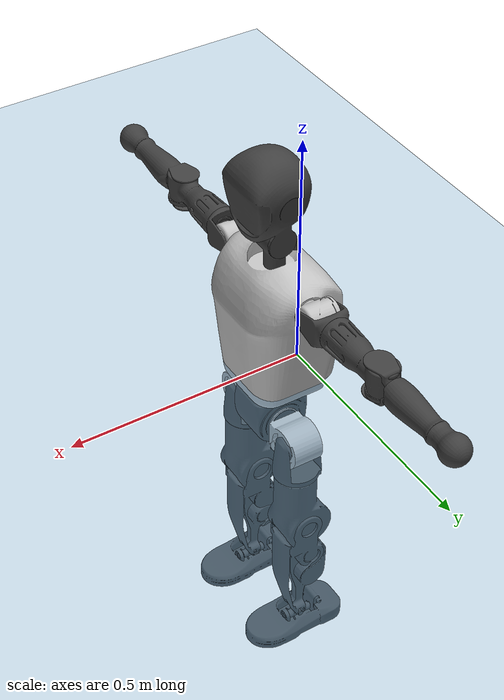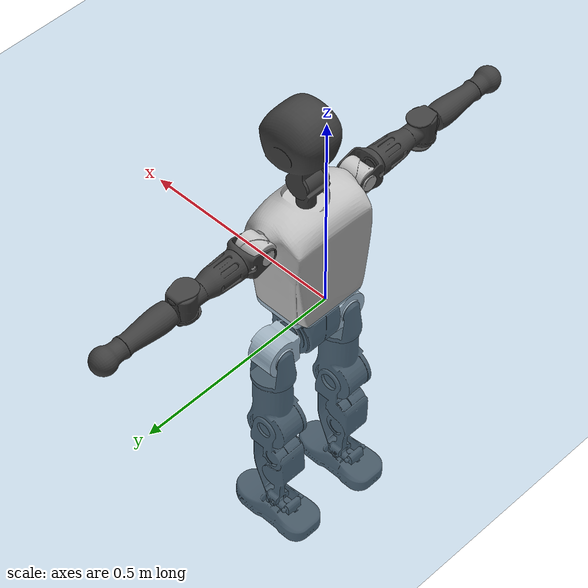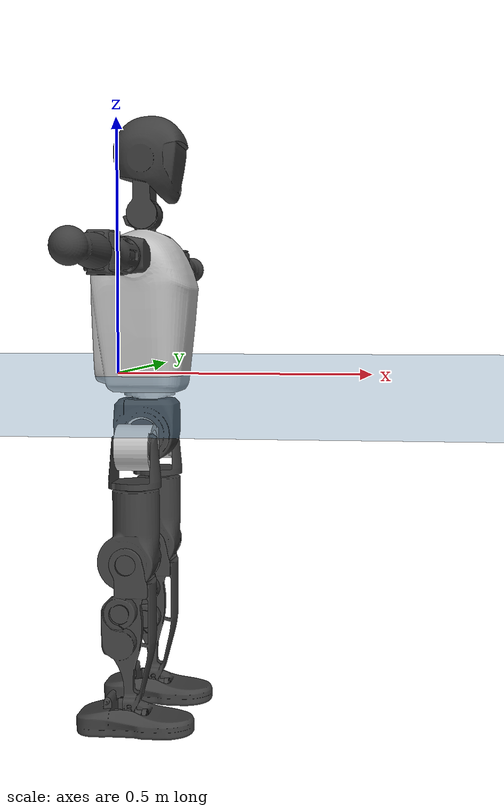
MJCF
<mujoco model="T1">
  <compiler angle="radian" assetdir="assets" balanceinertia="true" inertiafromgeom="false"/>

  <option timestep="0.005" density="1.2" viscosity="2e-05"/>

  <size nkey="1"/>

  <visual>
    <quality shadowsize="8192"/>
    <map shadowclip="0.5"/>
  </visual>

  <default>
    <default class="/">
      <joint armature="0.01" damping="0.01" frictionloss="0.1"/>
      <geom contype="0" conaffinity="0" group="1" solref="-1000 -80"/>
      <site size="0.01 0.005 0.005" group="5"/>
      <general forcelimited="true" biastype="affine" gainprm="25" biasprm="0 -25 -0.6"/>
      <default class="t1">
        <geom rgba="0.25 0.25 0.25 1"/>
        <default class="visual">
          <geom type="mesh" group="2"/>
        </default>
        <default class="collision">
          <geom group="3"/>
        </default>
        <default class="foot">
          <geom size="0.1115 0.05 0.015" type="box" condim="6" group="4" priority="1" solimp="0.015 1 0.015"/>
        </default>
        <default class="reward_collision_sphere">
          <geom group="5" rgba="1 0 0 1"/>
        </default>
      </default>
    </default>
  </default>

  <asset>
    <texture type="skybox" colorspace="auto" name="//unnamed_texture_0" builtin="gradient" rgb1="0.95 0.95 0.95" rgb2="0.95 0.95 0.95" width="100" height="600"/>
    <texture type="2d" colorspace="auto" name="texplane" builtin="checker" rgb1="0.345 0.575 0.748" rgb2="0.345 0.575 0.748" markrgb="1 1 1" width="512" height="512"/>
    <material name="MatPlane" class="/" texture="texplane" texuniform="true" texrepeat="2 2" specular="0.9"/>
    <mesh name="Trunk" class="/" file="Trunk.stl"/>
    <mesh name="H1" class="/" file="H1.stl"/>
    <mesh name="H2" class="/" file="H2.stl"/>
    <mesh name="AL1" class="/" file="AL1.stl"/>
    <mesh name="AL2" class="/" file="AL2.stl"/>
    <mesh name="AL3" class="/" file="AL3.stl"/>
    <mesh name="left_hand_link" class="/" file="left_hand_link.stl"/>
    <mesh name="AR1" class="/" file="AR1.stl"/>
    <mesh name="AR2" class="/" file="AR2.stl"/>
    <mesh name="AR3" class="/" file="AR3.stl"/>
    <mesh name="right_hand_link" class="/" file="right_hand_link.stl"/>
    <mesh name="Waist" class="/" file="Waist.stl"/>
    <mesh name="Hip_Pitch_Left" class="/" file="Hip_Pitch_Left.stl"/>
    <mesh name="Hip_Roll_Left" class="/" file="Hip_Roll_Left.stl"/>
    <mesh name="Hip_Yaw_Left" class="/" file="Hip_Yaw_Left.stl"/>
    <mesh name="Shank_Left" class="/" file="Shank_Left.stl"/>
    <mesh name="Ankle_Cross_Left" class="/" file="Ankle_Cross_Left.stl"/>
    <mesh name="left_foot_link" class="/" file="left_foot_link.stl"/>
    <mesh name="Hip_Pitch_Right" class="/" file="Hip_Pitch_Right.stl"/>
    <mesh name="Hip_Roll_Right" class="/" file="Hip_Roll_Right.stl"/>
    <mesh name="Hip_Yaw_Right" class="/" file="Hip_Yaw_Right.stl"/>
    <mesh name="Shank_Right" class="/" file="Shank_Right.stl"/>
    <mesh name="Ankle_Cross_Right" class="/" file="Ankle_Cross_Right.stl"/>
    <mesh name="right_foot_link" class="/" file="right_foot_link.stl"/>
  </asset>

  <worldbody>
    <geom name="floor" class="/" size="100 100 0.125" type="plane" group="0" material="MatPlane"/>
    <light name="toplight_shadow" class="/" pos="0 0 5" dir="0.0990148 0.0990148 -0.990148" type="directional" ambient="0.04 0.04 0.04" diffuse="0.55 0.55 0.55" specular="0.12 0.12 0.12"/>
    <light name="toplight_fill" class="/" pos="0 0 5" dir="0.0990148 0.0990148 -0.990148" type="directional" castshadow="false" ambient="0.04 0.04 0.04" diffuse="0.3 0.3 0.3" specular="0.08 0.08 0.08"/>
    <body name="trunk" childclass="t1" pos="0.00011838 0.000277207 0.000552027" quat="1 -0.00014035 -0.000290471 -0.000504962">
      <inertial pos="0.051259 6.36433e-05 0.107947" quat="0.999957 0.00144761 -0.00715163 0.00564069" mass="10.2651" diaginertia="0.0666754 0.051812 0.0641738"/>
      <joint name="//unnamed_joint_0" type="free" armature="0" damping="0" frictionloss="0"/>
      <geom name="//unnamed_geom_1" class="visual" rgba="0.76 0.76 0.76 1" mesh="Trunk"/>
      <geom name="//unnamed_geom_2" class="collision" size="0.0719041 0.0958722 0.143808" pos="0.0556855 0 0.122869" type="box"/>
      <geom name="//unnamed_geom_3" class="reward_collision_sphere" size="0.110253" pos="0.0556855 0 0.102391"/>
      <geom name="//unnamed_geom_4" class="reward_collision_sphere" size="0.0143808" pos="0.0556855 0.0785539 0"/>
      <geom name="//unnamed_geom_5" class="reward_collision_sphere" size="0.0143808" pos="0.0556855 -0.0785539 0"/>
      <geom name="//unnamed_geom_6" class="reward_collision_sphere" size="0.0143808" pos="0.0556855 0.0988855 0.184304"/>
      <geom name="//unnamed_geom_7" class="reward_collision_sphere" size="0.0143808" pos="0.0556855 -0.0988855 0.184304"/>
      <site name="imu" pos="0.00511735 -0.000229138 -0.00469871" size="0.00958722"/>
      <camera name="track" pos="0 -1.84833 0" quat="0.707107 0.707107 0 0" mode="trackcom"/>
      <camera name="ego_camera" pos="0.113227 0 0.430042" quat="-0.5 -0.5 0.5 0.5"/>
      <body name="H1" pos="0.0556337 -0.000450409 0.24641" quat="1 0.000113226 -9.52754e-05 -0.00011242">
        <inertial pos="-0.00076109 -0.00198022 0.0588186" quat="0.763956 -0.0135545 0.00287372 0.64512" mass="0.391132" diaginertia="0.000165219 0.000148174 0.000169266"/>
        <joint name="AAHead_yaw" pos="0 0 0" axis="0.00170924 0.000761767 0.999998" range="-1.54879 1.57953" armature="0.0106708" damping="0.011787" frictionloss="0.106021"/>
        <geom name="//unnamed_geom_8" class="visual" mesh="H1"/>
        <body name="H2" pos="-4.00894e-05 -0.00282557 0.0643485" quat="1 0.000421598 0.000128406 2.49827e-06">
          <inertial pos="0.0079246 -0.00129877 0.0984999" quat="0.987626 0.11249 -0.071736 -0.082426" mass="0.55562" diaginertia="0.00141572 0.00126564 0.00194774"/>
          <joint name="Head_pitch" pos="0 0 0" axis="8.18674e-05 -0.999984 -0.00572499" range="-1.21484 0.366636" armature="0.00969072" damping="0" frictionloss="0.0961871"/>
          <geom name="//unnamed_geom_9" class="visual" mesh="H2"/>
          <geom name="//unnamed_geom_10" class="collision" size="0.0766977" pos="0.00928092 0 0.11263"/>
          <geom name="//unnamed_geom_11" class="reward_collision_sphere" size="0.086285" pos="0.0185618 0 0.102391"/>
        </body>
      </body>
      <body name="AL1" pos="0.0538085 0.0998654 0.222175" quat="0.999999 0.00064558 0.00141374 0.000502106">
        <inertial pos="-0.00153171 0.0417789 -0.000488895" quat="0.504786 0.495817 -0.5039 0.49542" mass="0.468032" diaginertia="0.000941931 0.000847231 0.000322509"/>
        <joint name="Left_Shoulder_Pitch" pos="0 0 0" axis="-0.00666626 0.999958 -0.00622533" stiffness="0.00318542" range="-3.3068 1.26952" armature="0.00968352" damping="0" frictionloss="0.0950142"/>
        <geom name="//unnamed_geom_12" class="visual" rgba="0.76 0.76 0.76 1" mesh="AL1"/>
        <body name="AL2" pos="-0.000706098 0.0429315 -0.000776883" quat="1 -0.000143199 0.000410986 -0.00010541">
          <inertial pos="0.00428498 0.0372377 2.46646e-05" quat="0.487155 0.511718 -0.488172 0.51236" mass="0.140827" diaginertia="0.000278147 0.00023183 0.000199754"/>
          <joint name="Left_Shoulder_Roll" pos="0 0 0" axis="-0.999998 -0.000325003 0.00193409" range="-1.5798 1.74635" armature="0.0107283" damping="0.00895652" frictionloss="0.0955467"/>
          <geom name="//unnamed_geom_13" class="visual" mesh="AL2"/>
          <body name="AL3" pos="-0.000106623 0.0563345 -0.0001137" quat="1 0.00045664 0.000128112 0.000220616">
            <inertial pos="0.0015586 0.0765733 -0.00122845" quat="0.706324 0.707889 6.24481e-05 -5.005e-05" mass="0.859114" diaginertia="0.00889989 0.0085196 0.000675562"/>
            <joint name="Left_Elbow_Pitch" pos="0 0 0" axis="0.00200627 -0.999997 -0.00160225" range="-2.32255 2.2856" armature="0.0108627" damping="0.0109896" frictionloss="0.094544"/>
            <geom name="//unnamed_geom_14" class="visual" mesh="AL3"/>
            <geom name="//unnamed_geom_15" class="collision" size="0.0287617 0.0719041" pos="0 0.0462082 0" quat="0.707105 0.707108 0 0" type="cylinder"/>
            <geom name="//unnamed_geom_16" class="reward_collision_sphere" size="0.034514"/>
            <body name="left_hand_link" pos="0.00156927 0.13556 -7.86578e-05" quat="0.999999 0.000182216 -0.000215138 0.00112903">
              <inertial pos="-0.00243332 0.100675 0.000365143" quat="0.70808 0.706117 -6.61933e-05 -0.00471867" mass="0.28916" diaginertia="0.00546861 0.00542202 0.000247921"/>
              <joint name="Left_Elbow_Yaw" pos="0 0 0" axis="0.000639946 -2.95065e-05 1" stiffness="9.69462e-05" range="-2.45021 -0.0460591" armature="0.00961038" damping="0.0101281" frictionloss="0.0953747"/>
              <geom name="//unnamed_geom_17" class="visual" mesh="left_hand_link"/>
              <geom name="//unnamed_geom_18" class="collision" size="0.0287617 0.0838882" pos="0 0.120141 0" quat="0.707105 0.707108 0 0" type="cylinder"/>
              <geom name="//unnamed_geom_19" class="reward_collision_sphere" size="0.0479361"/>
              <geom name="//unnamed_geom_20" class="reward_collision_sphere" size="0.0335553" pos="0 0.101658 0"/>
              <geom name="//unnamed_geom_21" class="reward_collision_sphere" size="0.0335553" pos="0 0.198695 0"/>
            </body>
          </body>
        </body>
      </body>
      <body name="AR1" pos="0.0520506 -0.0993039 0.222881" quat="1 0.00014015 0.000592472 0.000534364">
        <inertial pos="-0.00137263 -0.04439 0.000581864" quat="0.502949 0.496811 -0.504217 0.49597" mass="0.450409" diaginertia="0.000924704 0.000846299 0.000318579"/>
        <joint name="Right_Shoulder_Pitch" pos="0 0 0" axis="0.00730181 -0.999919 -0.0104489" range="-1.2314 3.31367" armature="0.0105045" damping="0.0143797" frictionloss="0.098068"/>
        <geom name="//unnamed_geom_22" class="visual" rgba="0.76 0.76 0.76 1" mesh="AR1"/>
        <body name="AR2" pos="0.00192276 -0.0415617 -0.000205903" quat="0.999999 -0.000325452 0.000797486 0.000871469">
          <inertial pos="0.0031528 -0.0344434 0.00134264" quat="0.512431 0.487798 -0.513539 0.485536" mass="0.137232" diaginertia="0.000276048 0.000239267 0.000200917"/>
          <joint name="Right_Shoulder_Roll" pos="0 0 0" axis="-0.99998 -0.00226567 0.00590437" range="-1.75885 1.55072" armature="0.00940649" damping="0.00414202" frictionloss="0.108144"/>
          <geom name="//unnamed_geom_23" class="visual" mesh="AR2"/>
          <body name="AR3" pos="-4.84061e-05 -0.0573788 -0.0025925" quat="1 -4.89519e-06 2.22057e-06 8.20461e-07">
            <inertial pos="0.000171223 -0.0811617 0.000860484" quat="0.704953 0.7092 0.00812353 0.00342084" mass="0.897803" diaginertia="0.00882846 0.00870319 0.000714331"/>
            <joint name="Right_Elbow_Pitch" pos="0 0 0" axis="0.00914402 0.999957 0.00182222" range="-2.31093 2.26487" armature="0.00845216" damping="0.0087096" frictionloss="0.0987442"/>
            <geom name="//unnamed_geom_24" class="visual" mesh="AR3"/>
            <geom name="//unnamed_geom_25" class="collision" size="0.0287617 0.0719041" pos="0 -0.0462082 0" quat="0.707105 0.707108 0 0" type="cylinder"/>
            <geom name="//unnamed_geom_26" class="reward_collision_sphere" size="0.034514"/>
            <body name="right_hand_link" pos="-0.000813634 -0.136008 -0.00135347" quat="1 0.000370203 0.000562011 -0.00015173">
              <inertial pos="0.000136268 -0.100624 0.00332154" quat="0.706421 0.707792 0.000212393 -1.00651e-05" mass="0.291028" diaginertia="0.00561898 0.00554821 0.00024286"/>
              <joint name="Right_Elbow_Yaw" pos="0 0 0" axis="-0.000214686 -0.000591288 1" range="-0.010448 2.45049" armature="0.0106238" damping="0" frictionloss="0.101316"/>
              <geom name="//unnamed_geom_27" class="visual" mesh="right_hand_link"/>
              <geom name="//unnamed_geom_28" class="collision" size="0.0287617 0.0838882" pos="0 -0.120141 0" quat="0.707105 0.707108 0 0" type="cylinder"/>
              <geom name="//unnamed_geom_29" class="reward_collision_sphere" size="0.0479361"/>
              <geom name="//unnamed_geom_30" class="reward_collision_sphere" size="0.0335553" pos="0 -0.101658 0"/>
              <geom name="//unnamed_geom_31" class="reward_collision_sphere" size="0.0335553" pos="0 -0.198695 0"/>
            </body>
          </body>
        </body>
      </body>
      <body name="Waist" pos="0.0582812 -0.00304264 -0.115533" quat="1 1.41636e-05 -3.3448e-05 -2.89959e-05">
        <inertial pos="0.000286726 0.00029294 0.00717644" quat="0.98278 0.00534665 -0.184423 0.0101802" mass="2.20551" diaginertia="0.00357691 0.00343616 0.00518029"/>
        <joint name="Waist" pos="0 0 0" axis="0.00804655 -0.00676876 0.999945" range="-1.5787 1.52921" armature="0.00978497" damping="0.0122273" frictionloss="0.105123"/>
        <geom name="//unnamed_geom_32" class="visual" mesh="Waist"/>
        <body name="Hip_Pitch_Left" pos="0.00118381 0.0984508 -2.47141e-05" quat="1 0.000107991 0.000269014 0.000243605">
          <inertial pos="0.000496225 -0.0069894 -0.0192847" quat="0.975211 0.221015 0.0106087 0.00199562" mass="0.900167" diaginertia="0.00124423 0.00101835 0.00140864"/>
          <joint name="Left_Hip_Pitch" pos="0 0 0" axis="0.0148193 0.99989 0.000792777" range="-1.79961 1.619" armature="0.00955037" damping="0.000185673" frictionloss="0.0949888"/>
          <geom name="//unnamed_geom_33" class="visual" rgba="0.76 0.76 0.76 1" mesh="Hip_Pitch_Left"/>
          <body name="Hip_Roll_Left" pos="0.00119613 0.00235494 -0.0194433" quat="0.999999 0.00107173 0.000314381 -0.000969111">
            <inertial pos="-0.000453193 -0.000225571 -0.0552982" quat="0.703595 -0.00459649 -0.00506429 0.710569" mass="0.331548" diaginertia="0.00119422 0.000996898 0.000560547"/>
            <joint name="Left_Hip_Roll" pos="0 0 0" axis="-0.999952 0.0085689 -0.00465912" stiffness="0.00372461" range="-1.58278 0.204835" armature="0.00975151" damping="0.0112611" frictionloss="0.0985426"/>
            <geom name="//unnamed_geom_34" class="visual" mesh="Hip_Roll_Left"/>
            <geom name="//unnamed_geom_35" class="reward_collision_sphere" size="0.0527297"/>
            <body name="Hip_Yaw_Left" pos="-2.23617e-05 -0.000339133 -0.0838597" quat="1 -0.000185823 -6.76856e-05 -6.0824e-06">
              <inertial pos="-0.00565547 -0.00151755 -0.0916362" quat="0.70324 -0.0302563 -0.0243461 0.709891" mass="1.87416" diaginertia="0.0175809 0.016626 0.0028409"/>
              <joint name="Left_Hip_Yaw" pos="0 0 0" axis="0.00148371 -0.00263336 -0.999995" range="-1.03334 1.00302" armature="0.0095636" damping="0.00676871" frictionloss="0.0981196"/>
              <geom name="//unnamed_geom_36" class="visual" mesh="Hip_Yaw_Left"/>
              <geom name="//unnamed_geom_37" class="collision" size="0.0479361 0.0766977" type="cylinder"/>
              <body name="Shank_Left" pos="-0.0112587 -0.00177422 -0.137167" quat="1 -4.79687e-06 3.37422e-05 -7.23328e-05">
                <inertial pos="-0.00469474 -0.000792011 -0.127872" quat="0.99744 0.00827844 -0.0199579 0.0681617" mass="1.53073" diaginertia="0.0240141 0.0233685 0.0020409"/>
                <joint name="Left_Knee_Pitch" pos="0 0 0" axis="-0.00619305 0.999979 -0.00203484" range="-0.0212773 2.34454" armature="0.0106072" damping="0.00160362" frictionloss="0.100244"/>
                <geom name="//unnamed_geom_38" class="visual" mesh="Shank_Left"/>
                <geom name="//unnamed_geom_39" class="collision" size="0.0479361 0.0719041" pos="0 0 -0.122869" type="cylinder"/>
                <geom name="//unnamed_geom_40" class="reward_collision_sphere" size="0.0623169"/>
                <body name="Ankle_Cross_Left" pos="0.000823369 0.00112026 -0.288767" quat="0.999999 0.000111301 -0.00109651 -0.000113292">
                  <inertial pos="-0.00283237 -0.00228863 -0.00838023" quat="0.444837 0.555208 0.54688 0.441345" mass="0.0639826" diaginertia="1.99405e-05 1.76323e-05 1.28611e-05"/>
                  <joint name="Left_Ankle_Pitch" pos="0 0 0" axis="0.0025995 0.99999 0.00374932" range="-0.874 0.32842" armature="0.010141" damping="0.00624729" frictionloss="0.0982085"/>
                  <geom name="//unnamed_geom_41" class="visual" mesh="Ankle_Cross_Left"/>
                  <body name="left_foot_link" pos="-0.00185577 -0.00247219 -0.0118474" quat="1 -3.19805e-05 0.000109879 -2.18284e-05">
                    <inertial pos="0.00179212 -0.000488157 -0.00675047" quat="-0.0027426 0.620255 -0.00363069 0.784387" mass="0.614013" diaginertia="0.001895 0.00161802 0.00251688"/>
                    <joint name="Left_Ankle_Roll" pos="0 0 0" axis="-1 -3.45705e-05 9.2517e-05" stiffness="0.00311359" range="-0.434399 0.442508" armature="0.00850541" damping="0.0078923" frictionloss="0.0970254"/>
                    <geom name="//unnamed_geom_42" class="visual" mesh="left_foot_link"/>
                    <geom name="left_foot" class="foot" size="0.108578 0.0477417 0.0137549" pos="0.00928092 0 -0.0153586"/>
                    <geom name="//unnamed_geom_44" class="reward_collision_sphere" size="0.0498535" pos="0.00928092 0 -0.0153586"/>
                    <geom name="//unnamed_geom_45" class="reward_collision_sphere" size="0.0287617" pos="0.0881687 -0.0212558 -0.0153586"/>
                    <geom name="//unnamed_geom_46" class="reward_collision_sphere" size="0.0287617" pos="-0.0649664 -0.0212558 -0.0153586"/>
                    <site name="left_foot" class="foot" pos="0.00928092 0 -0.0153586" size="0.00958722"/>
                  </body>
                </body>
              </body>
            </body>
          </body>
        </body>
        <body name="Hip_Pitch_Right" pos="-0.00201744 -0.0984898 -0.000552034" quat="0.999999 -0.00102014 -0.000301992 -0.00103555">
          <inertial pos="0.000721281 0.0043625 -0.0182419" quat="0.973402 -0.228655 0.0135565 -0.00469966" mass="0.878391" diaginertia="0.00120674 0.000964105 0.00138284"/>
          <joint name="Right_Hip_Pitch" pos="0 0 0" axis="0.000386551 -0.999994 0.00341112" range="-1.59268 1.80046" armature="0.0097985" damping="0.0131101" frictionloss="0.107599"/>
          <geom name="//unnamed_geom_47" class="visual" rgba="0.76 0.76 0.76 1" mesh="Hip_Pitch_Right"/>
          <body name="Hip_Roll_Right" pos="-0.000709282 0.00106175 -0.0193511" quat="1 7.34583e-05 -8.82786e-06 -4.48007e-05">
            <inertial pos="-0.00109938 0.00237878 -0.0573685" quat="0.708693 -0.00804658 -0.00534364 0.705451" mass="0.337145" diaginertia="0.00120405 0.00101133 0.00057321"/>
            <joint name="Right_Hip_Roll" pos="0 0 0" axis="-0.999995 -0.00113039 -0.00306704" stiffness="0.001961" range="-0.210704 1.56674" armature="0.0093095" damping="0.00888434" frictionloss="0.0967014"/>
            <geom name="//unnamed_geom_48" class="visual" mesh="Hip_Roll_Right"/>
            <geom name="//unnamed_geom_49" class="reward_collision_sphere" size="0.0527297"/>
            <body name="Hip_Yaw_Right" pos="-0.000297518 -0.000985581 -0.0822627" quat="1 0.000197968 -0.000180823 0.000303994">
              <inertial pos="-0.00601056 -0.000845197 -0.0924304" quat="0.714319 -0.0315599 -0.0338955 0.698286" mass="1.88144" diaginertia="0.0179367 0.0169214 0.00296023"/>
              <joint name="Right_Hip_Yaw" pos="0 0 0" axis="0.00474588 -0.00401028 -0.999981" stiffness="0.00482096" range="-0.985825 0.967008" armature="0.00836337" damping="0.0166672" frictionloss="0.106901"/>
              <geom name="//unnamed_geom_50" class="visual" mesh="Hip_Yaw_Right"/>
              <geom name="//unnamed_geom_51" class="collision" size="0.0479361 0.0766977" type="cylinder"/>
              <body name="Shank_Right" pos="-0.013349 0.0019273 -0.137295" quat="0.999999 -0.000104955 0.000644657 0.000923737">
                <inertial pos="-0.00571922 0.00125592 -0.123186" quat="0.999143 -0.00376902 -0.0278863 -0.0303438" mass="1.54714" diaginertia="0.0241432 0.023407 0.00228354"/>
                <joint name="Right_Knee_Pitch" pos="0 0 0" axis="0.0059916 -0.999981 -0.0012784" range="-2.30449 -0.0409429" armature="0.00969102" damping="0.0123604" frictionloss="0.100354"/>
                <geom name="//unnamed_geom_52" class="visual" mesh="Shank_Right"/>
                <geom name="//unnamed_geom_53" class="collision" size="0.0479361 0.0719041" pos="0 0 -0.122869" type="cylinder"/>
                <geom name="//unnamed_geom_54" class="reward_collision_sphere" size="0.0623169"/>
                <body name="Ankle_Cross_Right" pos="0.000716546 -0.00253351 -0.287131" quat="0.999999 -0.00108457 -0.000684803 -8.19906e-05">
                  <inertial pos="-0.00249611 0.00117206 -0.00683583" quat="0.443372 0.550821 0.550895 0.443319" mass="0.0647864" diaginertia="1.97439e-05 1.73409e-05 1.24946e-05"/>
                  <joint name="Right_Ankle_Pitch" pos="0 0 0" axis="-0.00359898 -0.99997 0.00682175" stiffness="0.00157235" range="-0.387041 0.878727" armature="0.00981718" damping="0.00876814" frictionloss="0.0960355"/>
                  <geom name="//unnamed_geom_55" class="visual" mesh="Ankle_Cross_Right"/>
                  <body name="right_foot_link" pos="0.000607766 -0.00299869 -0.0118464" quat="1 -0.000195582 0.000114008 -0.000157473">
                    <inertial pos="-0.000680481 -0.00122125 -0.0110477" quat="0.0012963 0.62406 -0.00119948 0.781374" mass="0.612243" diaginertia="0.00187216 0.00160575 0.00243905"/>
                    <joint name="Right_Ankle_Roll" pos="0 0 0" axis="-0.999995 0.00298061 0.000711927" range="-0.387252 0.445374" armature="0.0104839" damping="0.00686576" frictionloss="0.0910741"/>
                    <geom name="//unnamed_geom_56" class="visual" mesh="right_foot_link"/>
                    <geom name="right_foot" class="foot" size="0.0889587 0.0470444 0.0135686" pos="0.00928092 0 -0.0153586"/>
                    <geom name="//unnamed_geom_58" class="reward_collision_sphere" size="0.0383489"/>
                    <geom name="//unnamed_geom_59" class="reward_collision_sphere" size="0.0287617" pos="0.00928092 0 -0.0153586"/>
                    <geom name="//unnamed_geom_60" class="reward_collision_sphere" size="0.0287617" pos="0.0881687 0.0212558 -0.0153586"/>
                    <geom name="//unnamed_geom_61" class="reward_collision_sphere" size="0.0287617" pos="-0.0649664 0.0212558 -0.0153586"/>
                    <site name="right_foot" class="foot" pos="0.00928092 0 -0.0153586" size="0.00958722"/>
                  </body>
                </body>
              </body>
            </body>
          </body>
        </body>
      </body>
    </body>
  </worldbody>

  <contact>
    <pair class="/" geom1="floor" geom2="left_foot" name="//unnamed_contact_0"/>
    <pair class="/" geom1="floor" geom2="right_foot" name="//unnamed_contact_1"/>
  </contact>

  <actuator>
    <general name="AAHead_yaw" class="/" joint="AAHead_yaw" forcerange="-6.67678 6.67678" gainprm="24.5302" biasprm="0 -24.5302 -0.585014"/>
    <general name="Head_pitch" class="/" joint="Head_pitch" forcerange="-6.93025 6.93025" gainprm="24.5302" biasprm="0 -24.5302 -0.585014"/>
    <general name="Left_Shoulder_Pitch" class="/" joint="Left_Shoulder_Pitch" forcerange="-17.498 17.498" gainprm="24.5302" biasprm="0 -24.5302 -0.585014"/>
    <general name="Left_Shoulder_Roll" class="/" joint="Left_Shoulder_Roll" forcerange="-18.3625 18.3625" gainprm="24.5302" biasprm="0 -24.5302 -0.585014"/>
    <general name="Left_Elbow_Pitch" class="/" joint="Left_Elbow_Pitch" forcerange="-17.031 17.031" gainprm="24.5302" biasprm="0 -24.5302 -0.585014"/>
    <general name="Left_Elbow_Yaw" class="/" joint="Left_Elbow_Yaw" forcerange="-17.5095 17.5095" gainprm="24.5302" biasprm="0 -24.5302 -0.585014"/>
    <general name="Right_Shoulder_Pitch" class="/" joint="Right_Shoulder_Pitch" forcerange="-17.3619 17.3619" gainprm="24.5302" biasprm="0 -24.5302 -0.585014"/>
    <general name="Right_Shoulder_Roll" class="/" joint="Right_Shoulder_Roll" forcerange="-17.9438 17.9438" gainprm="24.5302" biasprm="0 -24.5302 -0.585014"/>
    <general name="Right_Elbow_Pitch" class="/" joint="Right_Elbow_Pitch" forcerange="-16.6622 16.6622" gainprm="24.5302" biasprm="0 -24.5302 -0.585014"/>
    <general name="Right_Elbow_Yaw" class="/" joint="Right_Elbow_Yaw" forcerange="-17.8293 17.8293" gainprm="24.5302" biasprm="0 -24.5302 -0.585014"/>
    <general name="Waist" class="/" joint="Waist" forcerange="-26.9464 26.9464" gainprm="24.5302" biasprm="0 -24.5302 -0.585014"/>
    <general name="Left_Hip_Pitch" class="/" joint="Left_Hip_Pitch" forcerange="-44.7311 44.7311" gainprm="24.5302" biasprm="0 -24.5302 -0.585014"/>
    <general name="Left_Hip_Roll" class="/" joint="Left_Hip_Roll" forcerange="-28.6635 28.6635" gainprm="24.5302" biasprm="0 -24.5302 -0.585014"/>
    <general name="Left_Hip_Yaw" class="/" joint="Left_Hip_Yaw" forcerange="-29.4662 29.4662" gainprm="24.5302" biasprm="0 -24.5302 -0.585014"/>
    <general name="Left_Knee_Pitch" class="/" joint="Left_Knee_Pitch" forcerange="-53.3914 53.3914" gainprm="24.5302" biasprm="0 -24.5302 -0.585014"/>
    <general name="Left_Ankle_Pitch" class="/" joint="Left_Ankle_Pitch" forcerange="-20.9928 20.9928" gainprm="24.5302" biasprm="0 -24.5302 -0.585014"/>
    <general name="Left_Ankle_Roll" class="/" joint="Left_Ankle_Roll" forcerange="-13.0038 13.0038" gainprm="24.5302" biasprm="0 -24.5302 -0.585014"/>
    <general name="Right_Hip_Pitch" class="/" joint="Right_Hip_Pitch" forcerange="-43.5907 43.5907" gainprm="24.5302" biasprm="0 -24.5302 -0.585014"/>
    <general name="Right_Hip_Roll" class="/" joint="Right_Hip_Roll" forcerange="-26.9446 26.9446" gainprm="24.5302" biasprm="0 -24.5302 -0.585014"/>
    <general name="Right_Hip_Yaw" class="/" joint="Right_Hip_Yaw" forcerange="-31.3259 31.3259" gainprm="24.5302" biasprm="0 -24.5302 -0.585014"/>
    <general name="Right_Knee_Pitch" class="/" joint="Right_Knee_Pitch" forcerange="-55.416 55.416" gainprm="24.5302" biasprm="0 -24.5302 -0.585014"/>
    <general name="Right_Ankle_Pitch" class="/" joint="Right_Ankle_Pitch" forcerange="-19.126 19.126" gainprm="24.5302" biasprm="0 -24.5302 -0.585014"/>
    <general name="Right_Ankle_Roll" class="/" joint="Right_Ankle_Roll" forcerange="-14.5281 14.5281" gainprm="24.5302" biasprm="0 -24.5302 -0.585014"/>
  </actuator>

  <sensor>
    <gyro site="imu" name="imu_angular_velocity"/>
    <velocimeter site="imu" name="imu_linear_velocity"/>
    <framelinvel objtype="site" objname="left_foot" name="left_foot_global_linear_velocity"/>
    <framelinvel objtype="site" objname="right_foot" name="right_foot_global_linear_velocity"/>
  </sensor>

  <keyframe>
    <key name="home" qpos="0 0 0.6385 1 0 0 0 0 0 0 1.4 0 -0.4 0 -1.4 0 0.4 0 -0.4 0 0 0.8 -0.4 0 0.4 0 0 -0.8 0.4 0"/>
  </keyframe>
</mujoco>
